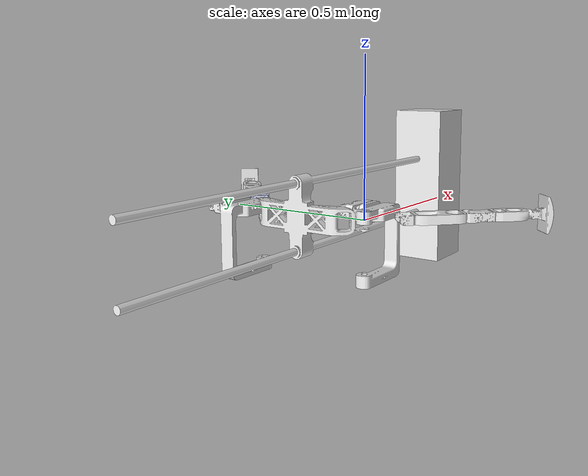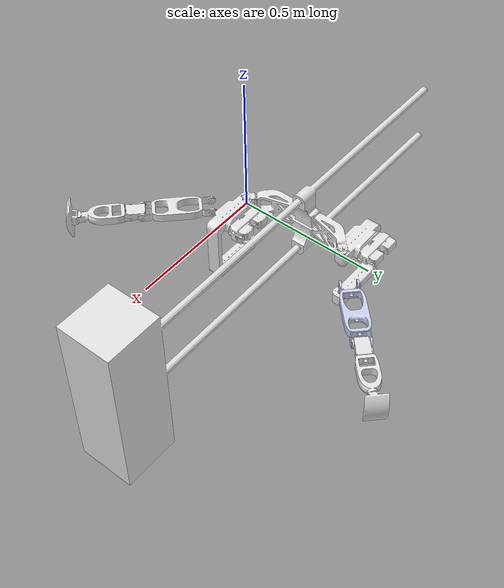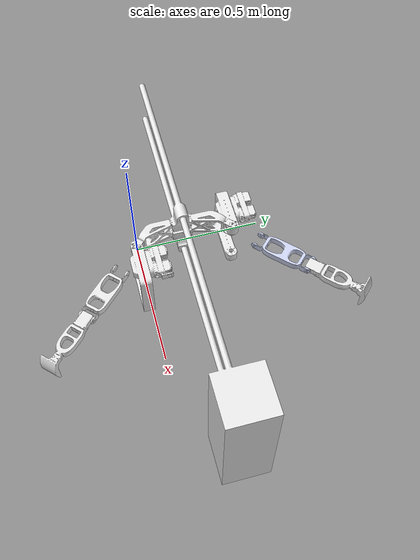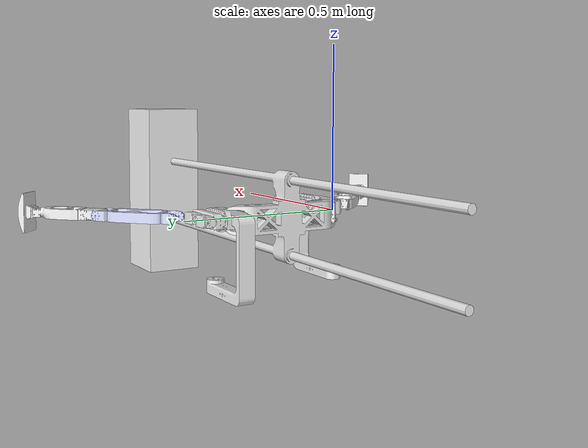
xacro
<?xml version="1.0" encoding="utf-8"?>

<robot xmlns:xacro="http://www.ros.org/wiki/xacro"
       name="Pata_Robo_Parcial">

  <!-- PROPIEDADES -->

  <!-- Nombre del paquete que contiene las mallas -->
  <xacro:property name="robot_name" value="Pata_Robo_Parcial_URDF_V2.4"/>
  <xacro:property name="mesh_dir"
                  value="package://robot_description/meshes"/>

  <!-- Colores -->
  <material name="gray">
    <color rgba="0.89412 0.89412 0.89412 1"/>
  </material>

  <material name="blue_gray">
    <color rgba="0.79216 0.81961 0.92941 1"/>
  </material>

  <!-- BASE -->

  <link name="Base_link">

    <inertial>
      <origin
        xyz="0.73582 0.2004 -6.6906E-07"
        rpy="0 0 0"/>

      <mass value="26.069"/>

      <inertia
        ixx="0.7959"
        ixy="7.8496E-14"
        ixz="-1.68E-14"
        iyy="2.1151"
        iyz="-1.3268E-08"
        izz="1.47"/>
    </inertial>

    <visual>
      <origin xyz="0 0 0" rpy="0 0 0"/>

      <geometry>
        <mesh filename="${mesh_dir}/Base_link.STL"/>
      </geometry>

      <material name="gray"/>
    </visual>

    <collision>
      <origin xyz="0 0 0" rpy="0 0 0"/>

      <geometry>
        <mesh filename="${mesh_dir}/Base_link.STL"/>
      </geometry>
    </collision>

  </link>

  <!-- LEFT HIP ROLL -->

  <joint
    name="Left_Hip_Roll_Joint"
    type="revolute">

    <origin
      xyz="0 0.4008 0"
      rpy="0 0 0"/>

    <parent link="Base_link"/>
    <child link="Left_Hip_Roll_Link"/>

    <axis xyz="0 0 1"/>

    <limit
      lower="-1.4835"
      upper="1.1345"
      effort="100"
      velocity="100"/>

  </joint>

  <link name="Left_Hip_Roll_Link">

    <inertial>

      <origin
        xyz="0.0421 0.042369 -0.00021766"
        rpy="0 0 0"/>

      <mass value="0.19411"/>

      <inertia
        ixx="7.1048E-05"
        ixy="-1.8487E-05"
        ixz="-7.1457E-08"
        iyy="7.0844E-05"
        iyz="-7.2372E-08"
        izz="8.9433E-05"/>

    </inertial>

    <visual>

      <origin xyz="0 0 0" rpy="0 0 0"/>

      <geometry>
        <mesh filename="${mesh_dir}/Left_Hip_Roll_Link.STL"/>
      </geometry>

      <material name="gray"/>

    </visual>

    <collision>

      <origin xyz="0 0 0" rpy="0 0 0"/>

      <geometry>
        <mesh filename="${mesh_dir}/Left_Hip_Roll_Link.STL"/>
      </geometry>

    </collision>

  </link>

  <!-- LEFT HIP PITCH -->

  <joint
    name="Left_Hip_Pitch_Joint"
    type="revolute">

    <origin
      xyz="0.084464 0.084464 0"
      rpy="-1.5708 0 0.7854"/>

    <parent link="Left_Hip_Roll_Link"/>
    <child link="Left_Hip_Pitch_Link"/>

    <axis xyz="0 0 1"/>

    <limit
      lower="-2.0071"
      upper="2.0071"
      effort="100"
      velocity="100"/>

  </joint>

  <link name="Left_Hip_Pitch_Link">

    <inertial>

      <origin
        xyz="0.12138 0.00022499 0.00023024"
        rpy="0 0 0"/>

      <mass value="0.21754"/>

      <inertia
        ixx="0.00017367"
        ixy="8.6938E-10"
        ixz="-8.5355E-09"
        iyy="0.00053617"
        iyz="-2.8312E-09"
        izz="0.00039504"/>

    </inertial>

    <visual>

      <origin xyz="0 0 0" rpy="0 0 0"/>

      <geometry>
        <mesh filename="${mesh_dir}/Left_Hip_Pitch_Link.STL"/>
      </geometry>

      <material name="blue_gray"/>

    </visual>

    <collision>

      <origin xyz="0 0 0" rpy="0 0 0"/>

      <geometry>
        <mesh filename="${mesh_dir}/Left_Hip_Pitch_Link.STL"/>
      </geometry>

    </collision>

  </link>

  <!-- LEFT KNEE -->

  <joint
    name="Left_Knee_Joint"
    type="revolute">

    <origin
      xyz="0.23605 0 0"
      rpy="-3.1416 0 0"/>

    <parent link="Left_Hip_Pitch_Link"/>
    <child link="Left_Knee_Link"/>

    <axis xyz="0 0 1"/>

    <limit
      lower="-2.0071"
      upper="2.0071"
      effort="100"
      velocity="100"/>

  </joint>

  <link name="Left_Knee_Link">

    <inertial>

      <origin
        xyz="0.14444 -0.00089335 -0.00035083"
        rpy="0 0 0"/>

      <mass value="0.38813"/>

      <inertia
        ixx="0.00026487"
        ixy="-8.6976E-07"
        ixz="-9.1769E-08"
        iyy="0.00042734"
        iyz="-1.3112E-09"
        izz="0.00042054"/>

    </inertial>

    <visual>

      <origin xyz="0 0 0" rpy="0 0 0"/>

      <geometry>
        <mesh filename="${mesh_dir}/Left_Knee_Link.STL"/>
      </geometry>

      <material name="gray"/>

    </visual>

    <collision>

      <origin xyz="0 0 0" rpy="0 0 0"/>

      <geometry>
        <mesh filename="${mesh_dir}/Left_Knee_Link.STL"/>
      </geometry>

    </collision>

  </link>

  <!-- RIGHT HIP ROLL -->

  <joint
    name="Right_Hip_Roll_Joint"
    type="revolute">

    <origin
      xyz="0 0 0"
      rpy="0 0 0"/>

    <parent link="Base_link"/>
    <child link="Right_Hip_Roll_Link"/>

    <axis xyz="0 0 -1"/>

    <limit
      lower="-1.4835"
      upper="1.1345"
      effort="100"
      velocity="100"/>

  </joint>

  <link name="Right_Hip_Roll_Link">

    <inertial>

      <origin
        xyz="0.041988 -0.042051 -0.00014451"
        rpy="0 0 0"/>

      <mass value="0.19411"/>

      <inertia
        ixx="7.1028E-05"
        ixy="1.8487E-05"
        ixz="-5.8699E-08"
        iyy="7.0864E-05"
        iyz="5.7785E-08"
        izz="8.9433E-05"/>

    </inertial>

    <visual>

      <origin xyz="0 0 0" rpy="0 0 0"/>

      <geometry>
        <mesh filename="${mesh_dir}/Right_Hip_Roll_Link.STL"/>
      </geometry>

      <material name="gray"/>

    </visual>

    <collision>

      <origin xyz="0 0 0" rpy="0 0 0"/>

      <geometry>
        <mesh filename="${mesh_dir}/Right_Hip_Roll_Link.STL"/>
      </geometry>

    </collision>

  </link>

  <!-- RIGHT HIP PITCH -->

  <joint
    name="Right_Hip_Pitch_Joint"
    type="revolute">

    <origin
      xyz="0.08404 -0.08404 0"
      rpy="-1.5708 0 -0.7854"/>

    <parent link="Right_Hip_Roll_Link"/>
    <child link="Right_Hip_Pitch_Link"/>

    <axis xyz="0 0 1"/>

    <limit
      lower="-2.0071"
      upper="2.0071"
      effort="100"
      velocity="100"/>

  </joint>

  <link name="Right_Hip_Pitch_Link">

    <inertial>

      <origin
        xyz="0.12138 9.9987E-05 -0.00049994"
        rpy="0 0 0"/>

      <mass value="0.21754"/>

      <inertia
        ixx="0.00017367"
        ixy="8.6941E-10"
        ixz="-8.5355E-09"
        iyy="0.00053617"
        iyz="-2.8312E-09"
        izz="0.00039504"/>

    </inertial>

    <visual>

      <origin xyz="0 0 0" rpy="0 0 0"/>

      <geometry>
        <mesh filename="${mesh_dir}/Right_Hip_Pitch_Link.STL"/>
      </geometry>

      <material name="gray"/>

    </visual>

    <collision>

      <origin xyz="0 0 0" rpy="0 0 0"/>

      <geometry>
        <mesh filename="${mesh_dir}/Right_Hip_Pitch_Link.STL"/>
      </geometry>

    </collision>

  </link>

  <!-- RIGHT KNEE -->

  <joint
    name="Right_Knee_Joint"
    type="revolute">

    <origin
      xyz="0.23605 0 0"
      rpy="-3.1416 0 0"/>

    <parent link="Right_Hip_Pitch_Link"/>
    <child link="Right_Knee_Link"/>

    <axis xyz="0 0 1"/>

    <limit
      lower="-2.0071"
      upper="2.0071"
      effort="100"
      velocity="100"/>

  </joint>

  <link name="Right_Knee_Link">

    <inertial>

      <origin
        xyz="0.14492 -0.0007698 0.00070842"
        rpy="0 0 0"/>

      <mass value="0.38813"/>

      <inertia
        ixx="0.00026487"
        ixy="-8.2858E-07"
        ixz="-9.2642E-08"
        iyy="0.00042734"
        iyz="-1.3206E-09"
        izz="0.00042054"/>

    </inertial>

    <visual>

      <origin xyz="0 0 0" rpy="0 0 0"/>

      <geometry>
        <mesh filename="${mesh_dir}/Right_Knee_Link.STL"/>
      </geometry>

      <material name="gray"/>

    </visual>

    <collision>

      <origin xyz="0 0 0" rpy="0 0 0"/>

      <geometry>
        <mesh filename="${mesh_dir}/Right_Knee_Link.STL"/>
      </geometry>

    </collision>

  </link>

</robot>
